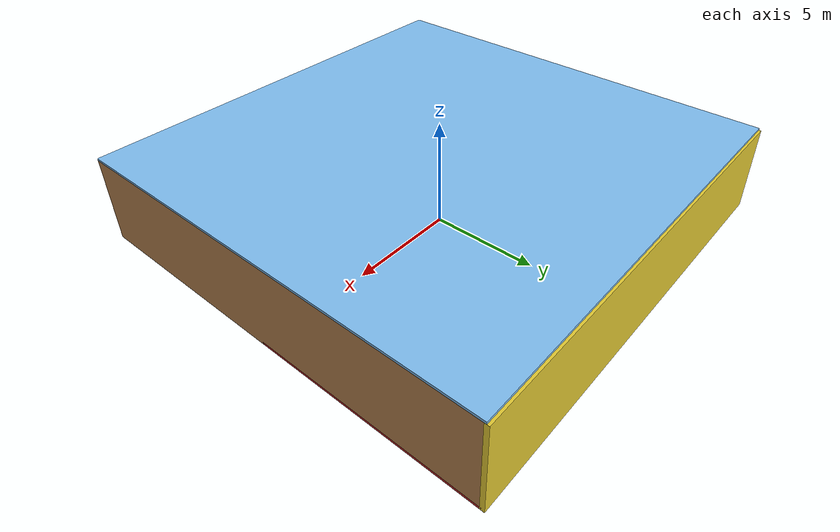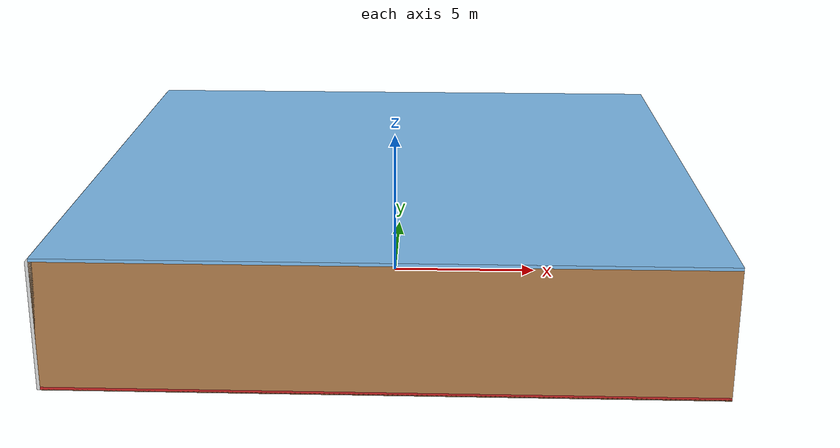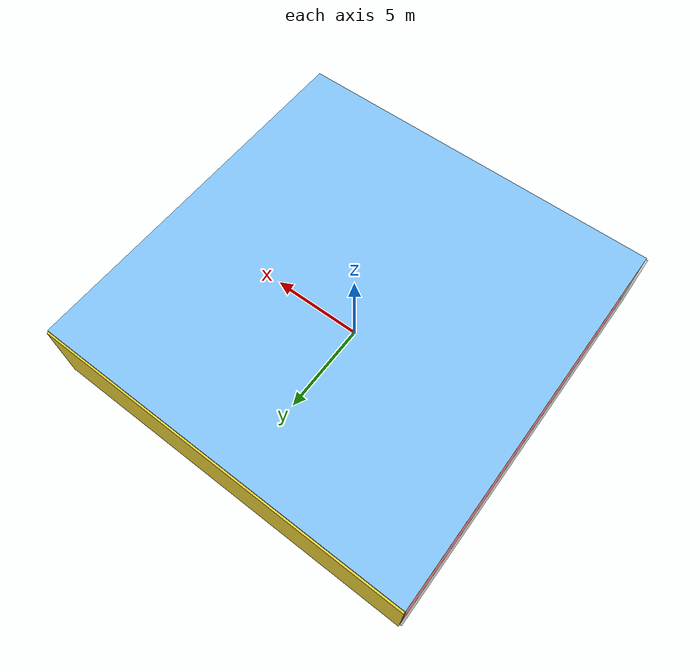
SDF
<sdf version="1.4">
 <world name="default">
  <physics type="ode">
   <max_step_size>0.001</max_step_size>
   <real_time_factor>1</real_time_factor>
   <real_time_update_rate>1000</real_time_update_rate>
   <gravity>0 0 -9.8</gravity>
  </physics>
  <scene><ambient>0.4 0.4 0.4 1</ambient><background>0.7 0.7 0.7 1</background><shadows>1</shadows></scene>
  <model name="Surrounding">
   <static>1</static>
   <link name="Ceiling">
    <collision name="Ceiling_Collision"><geometry><box><size>20 20 0.1</size></box></geometry></collision>
    <visual name="Ceiling_Visual">
     <geometry><box><size>20 20 0.1</size></box></geometry>
     <material>
      <script><uri>file://media/materials/scripts/gazebo.material</uri><name>Gazebo/SkyBlue</name></script>
     </material>
    </visual>
    <pose>0 0 4.05 0 0 0</pose>
   </link>
   <link name="Wall_South">
    <collision name="Wall_South_Collision">
     <geometry><box><size>20 0 4</size></box></geometry>
     <pose>0 0 2 0 -0 0</pose>
    </collision>
    <visual name="Wall_South_Visual">
     <pose>0 0 2 0 -0 0</pose>
     <geometry><box><size>20 0 4</size></box></geometry>
     <material>
      <script><uri>file://media/materials/scripts/gazebo.material</uri><name>Gazebo/Wood</name></script>
     </material>
    </visual>
    <velocity_decay><linear>0</linear><angular>0</angular></velocity_decay>
    <pose>0 -10 0 0 -0 0</pose>
   </link>
   <link name="Wall_East">
    <collision name="Wall_21_Collision">
     <geometry><box><size>20 0 4</size></box></geometry>
     <pose>0 0 2 0 -0 0</pose>
    </collision>
    <visual name="Wall_21_Visual">
     <pose>0 0 2 0 -0 0</pose>
     <geometry><box><size>20 0 4</size></box></geometry>
     <material>
      <script><uri>file://media/materials/scripts/gazebo.material</uri><name>Gazebo/WoodPallet</name></script>
     </material>
    </visual>
    <velocity_decay><linear>0</linear><angular>0</angular></velocity_decay>
    <pose>10 0 0 0 -0 1.5708</pose>
   </link>
   <link name="Wall_North">
    <collision name="Wall_22_Collision">
     <geometry><box><size>20 0.2 4</size></box></geometry>
     <pose>0 0 2 0 -0 0</pose>
    </collision>
    <visual name="Wall_22_Visual">
     <pose>0 0 2 0 -0 0</pose>
     <geometry><box><size>20 0.2 4</size></box></geometry>
     <material>
      <script><uri>file://media/materials/scripts/gazebo.material</uri><name>Gazebo/ZincYellow</name></script>
     </material>
    </visual>
    <velocity_decay><linear>0</linear><angular>0</angular></velocity_decay>
    <pose>0 10 0 0 -0 0</pose>
   </link>
   <link name="Wall_West">
    <collision name="Wall_23_Collision">
     <geometry><box><size>20 0.2 4</size></box></geometry>
     <pose>0 0 2 0 -0 0</pose>
    </collision>
    <visual name="Wall_23_Visual">
     <pose>0 0 2 0 -0 0</pose>
     <geometry><box><size>20 0.2 4</size></box></geometry>
     <material>
      <script><uri>file://media/materials/scripts/gazebo.material</uri><name>Gazebo/GreyTransparent</name></script>
     </material>
    </visual>
    <velocity_decay><linear>0</linear><angular>0</angular></velocity_decay>
    <pose>-10 0 0 0 0 -1.5708</pose>
   </link>
   <link name="Ground_link">
    <collision name="collision">
     <pose>0 0 .05 0 -0 0</pose>
     <geometry><box><size>20 20 0.1</size></box></geometry>
    </collision>
    <visual name="visual">
     <pose>0 0 .05 0 -0 0</pose>
     <geometry><box><size>20 20 0.1</size></box></geometry>
     <material>
      <script><uri>file://media/materials/scripts/gazebo.material</uri><name>Gazebo/Red</name></script>
     </material>
    </visual>
   </link>
   <static>1</static>
  </model>
  <spherical_coordinates>
   <surface_model>EARTH_WGS84</surface_model>
   <latitude_deg>0</latitude_deg>
   <longitude_deg>0</longitude_deg>
   <elevation>0</elevation>
   <heading_deg>0</heading_deg>
  </spherical_coordinates>
  <light name="lightball_0" type="diffuse">
   <diffuse>0.8 0.8 0.8 1</diffuse>
   <specular>0.2 0.2 0.2 1</specular>
   <attenuation>
    <range>100</range>
    <constant>0.7</constant>
    <linear>0.01</linear>
    <quadratic>0.001</quadratic>
   </attenuation>
   <direction>-0.5 0.1 -0.9</direction>
   <pose>-1.70509657081 6.54988624304 3.11620235071 0 0 0</pose>
  </light>
  <light name="lightball_1" type="diffuse">
   <diffuse>0.8 0.8 0.8 1</diffuse>
   <specular>0.2 0.2 0.2 1</specular>
   <attenuation>
    <range>100</range>
    <constant>0.7</constant>
    <linear>0.01</linear>
    <quadratic>0.001</quadratic>
   </attenuation>
   <direction>-0.5 0.1 -0.9</direction>
   <pose>-4.89730273602 5.5958530207 2.31406242187 0 0 0</pose>
  </light>
  <light name="lightball_2" type="diffuse">
   <diffuse>0.8 0.8 0.8 1</diffuse>
   <specular>0.2 0.2 0.2 1</specular>
   <attenuation>
    <range>100</range>
    <constant>0.7</constant>
    <linear>0.01</linear>
    <quadratic>0.001</quadratic>
   </attenuation>
   <direction>-0.5 0.1 -0.9</direction>
   <pose>3.67447312544 3.48884024247 1.3406707551 0 0 0</pose>
  </light>
  <light name="lightball_3" type="diffuse">
   <diffuse>0.8 0.8 0.8 1</diffuse>
   <specular>0.2 0.2 0.2 1</specular>
   <attenuation>
    <range>100</range>
    <constant>0.7</constant>
    <linear>0.01</linear>
    <quadratic>0.001</quadratic>
   </attenuation>
   <direction>-0.5 0.1 -0.9</direction>
   <pose>-8.60412224339 2.67404421095 3.78787770518 0 0 0</pose>
  </light>
  <include><uri>model://cabinet</uri><pose>-4.26175045489 -3.91158815946 0 0 0 2.15882161395</pose></include>
  <include><uri>model://cabinet</uri><pose>3.74614545651 -7.1699526929 0 0 0 0.898616854497</pose></include>
  <include><uri>model://table</uri><pose>7.34148077548 1.15864785465 0 0 0 3.1033915311</pose></include>
  <include><uri>model://table</uri><pose>7.13692574498 7.19748346173 0 0 0 0.396356328679</pose></include>
 </world>
</sdf>

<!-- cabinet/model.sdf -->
<sdf version="1.5">
  <model name="cabinet">
    <static>true</static>
    <link name="cabinet_bottom_plate">
      <inertial>
        <pose>0 0 -1 0 0 0</pose>
        <inertia>
          <ixx>2.050000</ixx>
          <ixy>0</ixy>
          <ixz>0</ixz>
          <iyy>2.050000</iyy>
          <iyz>0</iyz>
          <izz>2.050000</izz>
        </inertia>
        <mass>25.000000</mass>
      </inertial>
      <collision name="cabinet_bottom_plate_geom">
        <pose>0 0 0.010000 0 0 0</pose>
        <geometry>
          <box>
            <size>0.450000 0.450000 0.020000</size>
          </box>
        </geometry>
      </collision>
      <visual name="cabinet_bottom_plate_geom_visual">
        <pose>0 0 0.010000 0 0 0</pose>
        <geometry>
          <box>
            <size>0.450000 0.450000 0.020000</size>
          </box>
        </geometry>
        <material>
          <script>
            <uri>model://media/materials/scripts/gazebo.material</uri>
            <name>Gazebo/Wood</name>
          </script>
        </material>
      </visual>
      <collision name="cabinet_bottom_plate_geom_cabinet_back_plate">
        <pose>0.235000 0 0.510000 0 0 0</pose>
        <geometry>
          <box>
            <size>0.020000 0.450000 1.020000</size>
          </box>
        </geometry>
      </collision>
      <visual name="cabinet_bottom_plate_geom_cabinet_back_plate_visual">
        <pose>0.235000 0 0.510000 0 0 0</pose>
        <geometry>
          <box>
            <size>0.020000 0.450000 1.020000</size>
          </box>
        </geometry>
        <material>
          <script>
            <uri>model://media/materials/scripts/gazebo.material</uri>
            <name>Gazebo/Wood</name>
          </script>
        </material>
      </visual>
      <collision name="cabinet_bottom_plate_geom_cabinet_left_plate">
        <pose>0 0.235000 0.510000 0 0 0</pose>
        <geometry>
          <box>
            <size>0.450000 0.020000 1.020000</size>
          </box>
        </geometry>
      </collision>
      <visual name="cabinet_bottom_plate_geom_cabinet_left_plate_visual">
        <pose>0 0.235000 0.510000 0 0 0</pose>
        <geometry>
          <box>
            <size>0.450000 0.020000 1.020000</size>
          </box>
        </geometry>
        <material>
          <script>
            <uri>model://media/materials/scripts/gazebo.material</uri>
            <name>Gazebo/Wood</name>
          </script>
        </material>
      </visual>
      <collision name="cabinet_bottom_plate_geom_cabinet_middle_plate">
        <pose>0 0 0.510000 0 0 0</pose>
        <geometry>
          <box>
            <size>0.450000 0.450000 0.020000</size>
          </box>
        </geometry>
      </collision>
      <visual name="cabinet_bottom_plate_geom_cabinet_middle_plate_visual">
        <pose>0 0 0.510000 0 0 0</pose>
        <geometry>
          <box>
            <size>0.450000 0.450000 0.020000</size>
          </box>
        </geometry>
        <material>
          <script>
            <uri>model://media/materials/scripts/gazebo.material</uri>
            <name>Gazebo/Wood</name>
          </script>
        </material>
      </visual>
      <collision name="cabinet_bottom_plate_geom_cabinet_right_plate">
        <pose>0 -0.235000 0.510000 0 0 0</pose>
        <geometry>
          <box>
            <size>0.450000 0.020000 1.020000</size>
          </box>
        </geometry>
      </collision>
      <visual name="cabinet_bottom_plate_geom_cabinet_right_plate_visual">
        <pose>0 -0.235000 0.510000 0 0 0</pose>
        <geometry>
          <box>
            <size>0.450000 0.020000 1.020000</size>
          </box>
        </geometry>
        <material>
          <script>
            <uri>model://media/materials/scripts/gazebo.material</uri>
            <name>Gazebo/Wood</name>
          </script>
        </material>
      </visual>
      <collision name="cabinet_bottom_plate_geom_cabinet_top_plate">
        <pose>0 0 1.010000 0 0 0</pose>
        <geometry>
          <box>
            <size>0.450000 0.450000 0.020000</size>
          </box>
        </geometry>
      </collision>
      <visual name="cabinet_bottom_plate_geom_cabinet_top_plate_visual">
        <pose>0 0 1.010000 0 0 0</pose>
        <geometry>
          <box>
            <size>0.450000 0.450000 0.020000</size>
          </box>
        </geometry>
        <material>
          <script>
            <uri>model://media/materials/scripts/gazebo.material</uri>
            <name>Gazebo/Wood</name>
          </script>
        </material>
      </visual>
    </link>
  </model>
</sdf>

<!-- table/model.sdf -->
<sdf version="1.5">
  <model name="table">
    <static>true</static>
    <link name="link">
      <collision name="surface">
        <pose>0 0 1.0 0 0 0</pose>
        <geometry>
          <box>
            <size>1.5 0.8 0.03</size>
          </box>
        </geometry>
        <surface>
          <friction>
            <ode>
              <mu>0.6</mu>
              <mu2>0.6</mu2>
            </ode>
          </friction>
        </surface>
      </collision>
      <visual name="visual1">
        <pose>0 0 1.0 0 0 0</pose>
        <geometry>
          <box>
            <size>1.5 0.8 0.03</size>
          </box>
        </geometry>
        <material>
          <script>
            <uri>model://media/materials/scripts/gazebo.material</uri>
            <name>Gazebo/Wood</name>
          </script>
        </material>
      </visual>
      <collision name="front_left_leg">
        <pose>0.68 0.38 0.5 0 0 0</pose>
        <geometry>
          <cylinder>
            <radius>0.02</radius>
            <length>1.0</length>
          </cylinder>
        </geometry>
      </collision>
      <visual name="front_left_leg">
        <pose>0.68 0.38 0.5 0 0 0</pose>
        <geometry>
          <cylinder>
            <radius>0.02</radius>
            <length>1.0</length>
          </cylinder>
        </geometry>
        <material>
          <script>
            <uri>model://media/materials/scripts/gazebo.material</uri>
            <name>Gazebo/Grey</name>
          </script>
        </material>
      </visual>
      <collision name="front_right_leg">
        <pose>0.68 -0.38 0.5 0 0 0</pose>
        <geometry>
          <cylinder>
            <radius>0.02</radius>
            <length>1.0</length>
          </cylinder>
        </geometry>
      </collision>
      <visual name="front_right_leg">
        <pose>0.68 -0.38 0.5 0 0 0</pose>
        <geometry>
          <cylinder>
            <radius>0.02</radius>
            <length>1.0</length>
          </cylinder>
        </geometry>
        <material>
          <script>
            <uri>model://media/materials/scripts/gazebo.material</uri>
            <name>Gazebo/Grey</name>
          </script>
        </material>
      </visual>
      <collision name="back_right_leg">
        <pose>-0.68 -0.38 0.5 0 0 0</pose>
        <geometry>
          <cylinder>
            <radius>0.02</radius>
            <length>1.0</length>
          </cylinder>
        </geometry>
      </collision>
      <visual name="back_right_leg">
        <pose>-0.68 -0.38 0.5 0 0 0</pose>
        <geometry>
          <cylinder>
            <radius>0.02</radius>
            <length>1.0</length>
          </cylinder>
        </geometry>
        <material>
          <script>
            <uri>model://media/materials/scripts/gazebo.material</uri>
            <name>Gazebo/Grey</name>
          </script>
        </material>
      </visual>
      <collision name="back_left_leg">
        <pose>-0.68 0.38 0.5 0 0 0</pose>
        <geometry>
          <cylinder>
            <radius>0.02</radius>
            <length>1.0</length>
          </cylinder>
        </geometry>
      </collision>
      <visual name="back_left_leg">
        <pose>-0.68 0.38 0.5 0 0 0</pose>
        <geometry>
          <cylinder>
            <radius>0.02</radius>
            <length>1.0</length>
          </cylinder>
        </geometry>
        <material>
          <script>
            <uri>model://media/materials/scripts/gazebo.material</uri>
            <name>Gazebo/Grey</name>
          </script>
        </material>
      </visual>
    </link>
  </model>
</sdf>
